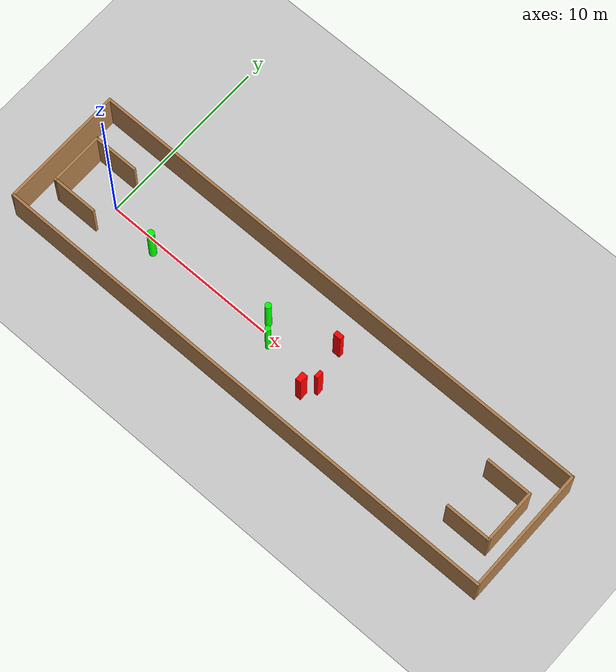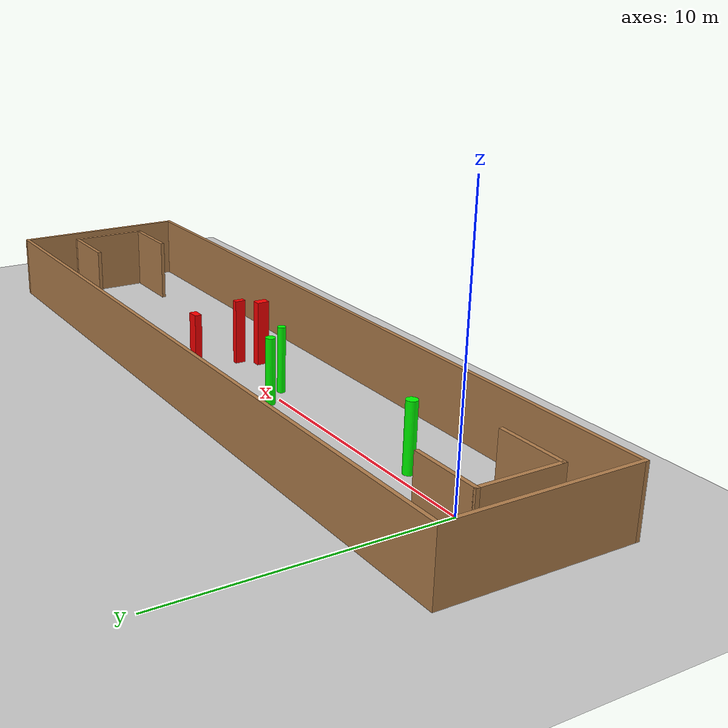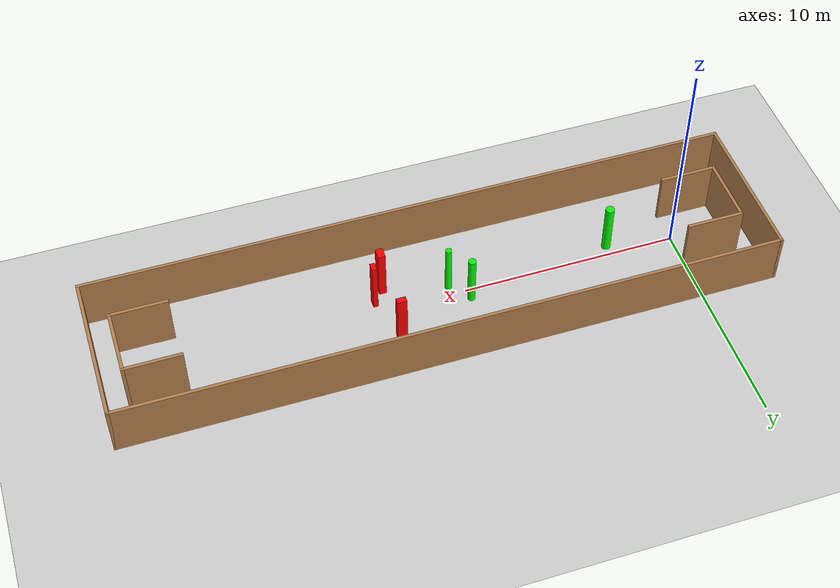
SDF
<sdf version="1.7">
 <world name="default">
  <light name="sun" type="directional">
   <pose>0 0 10 0 -0 0</pose>
   <diffuse>0.8 0.8 0.8 1</diffuse>
   <specular>0.2 0.2 0.2 1</specular>
   <attenuation>
    <range>1000</range>
    <constant>0.9</constant>
    <linear>0.01</linear>
    <quadratic>0.001</quadratic>
   </attenuation>
   <direction>-0.5 0.1 -0.9</direction>
   <spot><inner_angle>0</inner_angle><outer_angle>0</outer_angle><falloff>0</falloff></spot>
  </light>
  <model name="ground_plane">
   <static>1</static>
   <link name="link">
    <collision name="collision">
     <geometry><plane><normal>0 0 1</normal><size>100 100</size></plane></geometry>
     <surface>
      <contact><collide_bitmask>65535</collide_bitmask></contact>
      <friction><ode><mu>100</mu><mu2>50</mu2></ode></friction>
     </surface>
    </collision>
    <visual name="visual">
     <cast_shadows>0</cast_shadows>
     <geometry><plane><normal>0 0 1</normal><size>100 100</size></plane></geometry>
     <material>
      <script><uri>file://media/materials/scripts/gazebo.material</uri><name>Gazebo/Grey</name></script>
     </material>
    </visual>
   </link>
  </model>
  <gravity>0 0 -9.8</gravity>
  <magnetic_field>6e-06 2.3e-05 -4.2e-05</magnetic_field>
  <atmosphere type="adiabatic"/>
  <physics type="ode">
   <max_step_size>0.001</max_step_size>
   <real_time_factor>1</real_time_factor>
   <real_time_update_rate>1000</real_time_update_rate>
  </physics>
  <scene><ambient>0.4 0.4 0.4 1</ambient><background>0.7 0.7 0.7 1</background><shadows>1</shadows></scene>
  <spherical_coordinates>
   <surface_model>EARTH_WGS84</surface_model>
   <latitude_deg>0</latitude_deg>
   <longitude_deg>0</longitude_deg>
   <elevation>0</elevation>
   <heading_deg>0</heading_deg>
  </spherical_coordinates>
  <model name="my_base_walls">
   <link name="Wall_0">
    <collision name="Wall_0_Collision">
     <geometry><box><size>7.15 0.15 2.5</size></box></geometry>
     <pose>0 0 1.25 0 -0 0</pose>
    </collision>
    <visual name="Wall_0_Visual">
     <pose>0 0 1.25 0 -0 0</pose>
     <geometry><box><size>7.15 0.15 2.5</size></box></geometry>
     <material>
      <script><uri>file://media/materials/scripts/gazebo.material</uri><name>Gazebo/Wood</name></script>
      <ambient>1 1 1 1</ambient>
     </material>
     <meta><layer>0</layer></meta>
    </visual>
    <pose>-15 0 0 0 -0 1.5708</pose>
   </link>
   <link name="Wall_10">
    <collision name="Wall_10_Collision">
     <geometry><box><size>2.65 0.15 2.5</size></box></geometry>
     <pose>0 0 1.25 0 -0 0</pose>
    </collision>
    <visual name="Wall_10_Visual">
     <pose>0 0 1.25 0 -0 0</pose>
     <geometry><box><size>2.65 0.15 2.5</size></box></geometry>
     <material>
      <script><uri>file://media/materials/scripts/gazebo.material</uri><name>Gazebo/Wood</name></script>
      <ambient>1 1 1 1</ambient>
     </material>
     <meta><layer>0</layer></meta>
    </visual>
    <pose>-12.75 -1.5 0 0 -0 0</pose>
   </link>
   <link name="Wall_12">
    <collision name="Wall_12_Collision">
     <geometry><box><size>2.65 0.15 2.5</size></box></geometry>
     <pose>0 0 1.25 0 -0 0</pose>
    </collision>
    <visual name="Wall_12_Visual">
     <pose>0 0 1.25 0 -0 0</pose>
     <geometry><box><size>2.65 0.15 2.5</size></box></geometry>
     <material>
      <script><uri>file://media/materials/scripts/gazebo.material</uri><name>Gazebo/Wood</name></script>
      <ambient>1 1 1 1</ambient>
     </material>
     <meta><layer>0</layer></meta>
    </visual>
    <pose>-12.75 1.5 0 0 -0 0</pose>
   </link>
   <link name="Wall_14">
    <collision name="Wall_14_Collision">
     <geometry><box><size>3.15 0.15 2.5</size></box></geometry>
     <pose>0 0 1.25 0 -0 0</pose>
    </collision>
    <visual name="Wall_14_Visual">
     <pose>0 0 1.25 0 -0 0</pose>
     <geometry><box><size>3.15 0.15 2.5</size></box></geometry>
     <material>
      <script><uri>file://media/materials/scripts/gazebo.material</uri><name>Gazebo/Wood</name></script>
      <ambient>1 1 1 1</ambient>
     </material>
     <meta><layer>0</layer></meta>
    </visual>
    <pose>14 0 0 0 -0 -1.5708</pose>
   </link>
   <link name="Wall_15">
    <collision name="Wall_15_Collision">
     <geometry><box><size>2.65 0.15 2.5</size></box></geometry>
     <pose>0 0 1.25 0 -0 0</pose>
    </collision>
    <visual name="Wall_15_Visual">
     <pose>0 0 1.25 0 -0 0</pose>
     <geometry><box><size>2.65 0.15 2.5</size></box></geometry>
     <material>
      <script><uri>file://media/materials/scripts/gazebo.material</uri><name>Gazebo/Wood</name></script>
      <ambient>1 1 1 1</ambient>
     </material>
     <meta><layer>0</layer></meta>
    </visual>
    <pose>12.75 -1.5 0 0 -0 3.14159</pose>
   </link>
   <link name="Wall_17">
    <collision name="Wall_17_Collision">
     <geometry><box><size>2.65 0.15 2.5</size></box></geometry>
     <pose>0 0 1.25 0 -0 0</pose>
    </collision>
    <visual name="Wall_17_Visual">
     <pose>0 0 1.25 0 -0 0</pose>
     <geometry><box><size>2.65 0.15 2.5</size></box></geometry>
     <material>
      <script><uri>file://media/materials/scripts/gazebo.material</uri><name>Gazebo/Wood</name></script>
      <ambient>1 1 1 1</ambient>
     </material>
     <meta><layer>0</layer></meta>
    </visual>
    <pose>12.75 1.5 0 0 -0 3.14159</pose>
   </link>
   <link name="Wall_2">
    <collision name="Wall_2_Collision">
     <geometry><box><size>30.15 0.15 2.5</size></box></geometry>
     <pose>0 0 1.25 0 -0 0</pose>
    </collision>
    <visual name="Wall_2_Visual">
     <pose>0 0 1.25 0 -0 0</pose>
     <geometry><box><size>30.15 0.15 2.5</size></box></geometry>
     <material>
      <script><uri>file://media/materials/scripts/gazebo.material</uri><name>Gazebo/Wood</name></script>
      <ambient>1 1 1 1</ambient>
     </material>
     <meta><layer>0</layer></meta>
    </visual>
    <pose>-0 -3.5 0 0 -0 0</pose>
   </link>
   <link name="Wall_4">
    <collision name="Wall_4_Collision">
     <geometry><box><size>30.15 0.15 2.5</size></box></geometry>
     <pose>0 0 1.25 0 -0 0</pose>
    </collision>
    <visual name="Wall_4_Visual">
     <pose>0 0 1.25 0 -0 0</pose>
     <geometry><box><size>30.15 0.15 2.5</size></box></geometry>
     <material>
      <script><uri>file://media/materials/scripts/gazebo.material</uri><name>Gazebo/Wood</name></script>
      <ambient>1 1 1 1</ambient>
     </material>
     <meta><layer>0</layer></meta>
    </visual>
    <pose>-0 3.5 0 0 -0 0</pose>
   </link>
   <link name="Wall_6">
    <collision name="Wall_6_Collision">
     <geometry><box><size>7.15 0.15 2.5</size></box></geometry>
     <pose>0 0 1.25 0 -0 0</pose>
    </collision>
    <visual name="Wall_6_Visual">
     <pose>0 0 1.25 0 -0 0</pose>
     <geometry><box><size>7.15 0.15 2.5</size></box></geometry>
     <material>
      <script><uri>file://media/materials/scripts/gazebo.material</uri><name>Gazebo/Wood</name></script>
      <ambient>1 1 1 1</ambient>
     </material>
     <meta><layer>0</layer></meta>
    </visual>
    <pose>15 0 0 0 -0 -1.5708</pose>
   </link>
   <link name="Wall_9">
    <collision name="Wall_9_Collision">
     <geometry><box><size>3.15 0.15 2.5</size></box></geometry>
     <pose>0 0 1.25 0 -0 0</pose>
    </collision>
    <visual name="Wall_9_Visual">
     <pose>0 0 1.25 0 -0 0</pose>
     <geometry><box><size>3.15 0.15 2.5</size></box></geometry>
     <material>
      <script><uri>file://media/materials/scripts/gazebo.material</uri><name>Gazebo/Wood</name></script>
      <ambient>1 1 1 1</ambient>
     </material>
     <meta><layer>0</layer></meta>
    </visual>
    <pose>-14 0 0 0 -0 -1.5708</pose>
   </link>
   <static>1</static>
   <pose>11.5 0 0 0 -0 0</pose>
  </model>
  <model name="cylinder1">
   <static>1</static>
   <link name="link">
    <inertial>
     <mass>1</mass>
     <inertia><ixx>0.5</ixx><ixy>0</ixy><ixz>0</ixz><iyy>0.5</iyy><iyz>0</iyz><izz>1</izz></inertia>
    </inertial>
    <collision name="collision">
     <geometry><cylinder><radius>0.15028162332329192</radius><length>2.5</length></cylinder></geometry>
    </collision>
    <visual name="visual">
     <geometry><cylinder><radius>0.15028162332329192</radius><length>2.5</length></cylinder></geometry>
     <material>
      <ambient>0 1 0 1</ambient>
      <diffuse>0 1 0 1</diffuse>
      <specular>0.1 0.1 0.1 1</specular>
      <emissive>0 0 0 0</emissive>
     </material>
    </visual>
   </link>
   <pose>10.667299146912217 -0.45287517626969365 1.25 0 0 0</pose>
  </model>
  <model name="cylinder2">
   <static>1</static>
   <link name="link">
    <inertial>
     <mass>1</mass>
     <inertia><ixx>0.5</ixx><ixy>0</ixy><ixz>0</ixz><iyy>0.5</iyy><iyz>0</iyz><izz>1</izz></inertia>
    </inertial>
    <collision name="collision">
     <geometry><cylinder><radius>0.17760257822831677</radius><length>2.5</length></cylinder></geometry>
    </collision>
    <visual name="visual">
     <geometry><cylinder><radius>0.17760257822831677</radius><length>2.5</length></cylinder></geometry>
     <material>
      <ambient>0 1 0 1</ambient>
      <diffuse>0 1 0 1</diffuse>
      <specular>0.1 0.1 0.1 1</specular>
      <emissive>0 0 0 0</emissive>
     </material>
    </visual>
   </link>
   <pose>9.88148342578241 0.45673924361464735 1.25 0 0 0</pose>
  </model>
  <model name="cylinder3">
   <static>1</static>
   <link name="link">
    <inertial>
     <mass>1</mass>
     <inertia><ixx>0.5</ixx><ixy>0</ixy><ixz>0</ixz><iyy>0.5</iyy><iyz>0</iyz><izz>1</izz></inertia>
    </inertial>
    <collision name="collision">
     <geometry><cylinder><radius>0.20581221039554157</radius><length>2.5</length></cylinder></geometry>
    </collision>
    <visual name="visual">
     <geometry><cylinder><radius>0.20581221039554157</radius><length>2.5</length></cylinder></geometry>
     <material>
      <ambient>0 1 0 1</ambient>
      <diffuse>0 1 0 1</diffuse>
      <specular>0.1 0.1 0.1 1</specular>
      <emissive>0 0 0 0</emissive>
     </material>
    </visual>
   </link>
   <pose>3.0002824707982008 -0.5274069591782391 1.25 0 0 0</pose>
  </model>
  <model name="box1">
   <static>1</static>
   <link name="link">
    <inertial>
     <mass>1</mass>
     <inertia><ixx>0.083</ixx><ixy>0</ixy><ixz>0</ixz><iyy>0.083</iyy><iyz>0</iyz><izz>0.083</izz></inertia>
    </inertial>
    <collision name="collision">
     <geometry><box><size>0.32997346825725077 0.49455369870438826 2.5</size></box></geometry>
    </collision>
    <visual name="visual">
     <geometry><box><size>0.32997346825725077 0.49455369870438826 2.5</size></box></geometry>
     <material>
      <ambient>1 0 0 1</ambient>
      <diffuse>1 0 0 1</diffuse>
      <specular>0.1 0.1 0.1 1</specular>
      <emissive>0 0 0 0</emissive>
     </material>
    </visual>
    <sensor name="my_contact" type="contact">
     <contact><collision>box_collision</collision><topic>__default_topic__</topic></contact>
    </sensor>
   </link>
   <pose>13.559344828553915 -1.2578212007358869 1.25 0 0 0</pose>
  </model>
  <model name="box2">
   <static>1</static>
   <link name="link">
    <inertial>
     <mass>1</mass>
     <inertia><ixx>0.083</ixx><ixy>0</ixy><ixz>0</ixz><iyy>0.083</iyy><iyz>0</iyz><izz>0.083</izz></inertia>
    </inertial>
    <collision name="collision">
     <geometry><box><size>0.44903760797294234 0.2729228576425582 2.5</size></box></geometry>
    </collision>
    <visual name="visual">
     <geometry><box><size>0.44903760797294234 0.2729228576425582 2.5</size></box></geometry>
     <material>
      <ambient>1 0 0 1</ambient>
      <diffuse>1 0 0 1</diffuse>
      <specular>0.1 0.1 0.1 1</specular>
      <emissive>0 0 0 0</emissive>
     </material>
    </visual>
    <sensor name="my_contact" type="contact">
     <contact><collision>box_collision</collision><topic>__default_topic__</topic></contact>
    </sensor>
   </link>
   <pose>13.469164996966958 1.5700185124906954 1.25 0 0 0</pose>
  </model>
  <model name="box3">
   <static>1</static>
   <link name="link">
    <inertial>
     <mass>1</mass>
     <inertia><ixx>0.083</ixx><ixy>0</ixy><ixz>0</ixz><iyy>0.083</iyy><iyz>0</iyz><izz>0.083</izz></inertia>
    </inertial>
    <collision name="collision">
     <geometry><box><size>0.22306686875029086 0.4061676888179139 2.5</size></box></geometry>
    </collision>
    <visual name="visual">
     <geometry><box><size>0.22306686875029086 0.4061676888179139 2.5</size></box></geometry>
     <material>
      <ambient>1 0 0 1</ambient>
      <diffuse>1 0 0 1</diffuse>
      <specular>0.1 0.1 0.1 1</specular>
      <emissive>0 0 0 0</emissive>
     </material>
    </visual>
    <sensor name="my_contact" type="contact">
     <contact><collision>box_collision</collision><topic>__default_topic__</topic></contact>
    </sensor>
   </link>
   <pose>14.078665176182133 -0.5824221838820507 1.25 0 0 0</pose>
  </model>
 </world>
</sdf>
